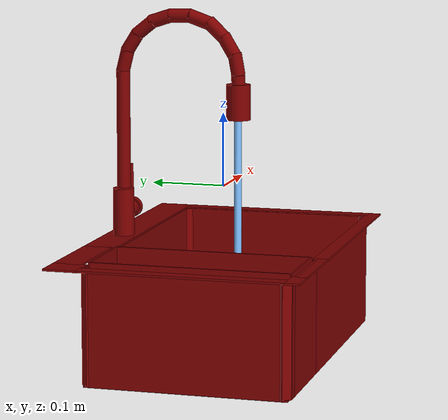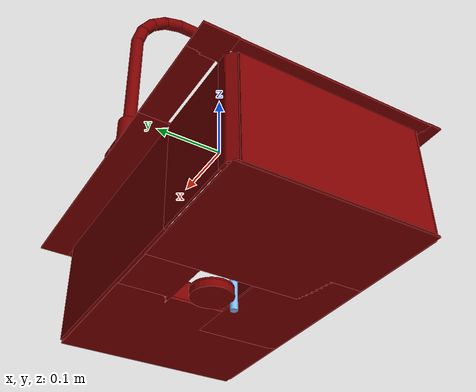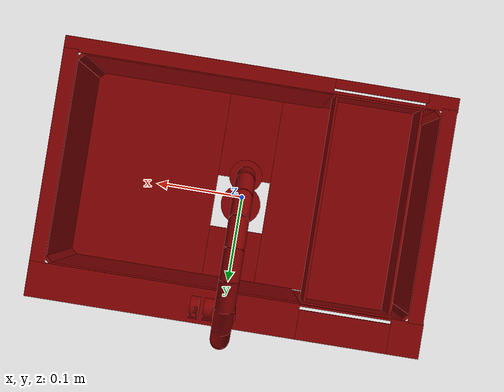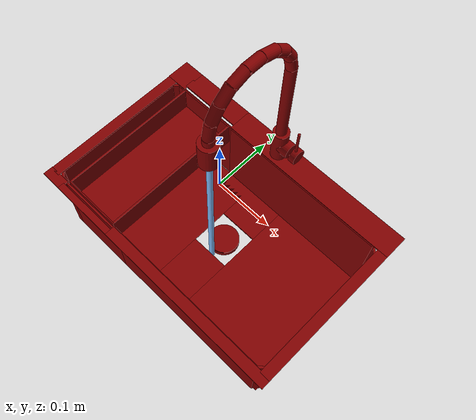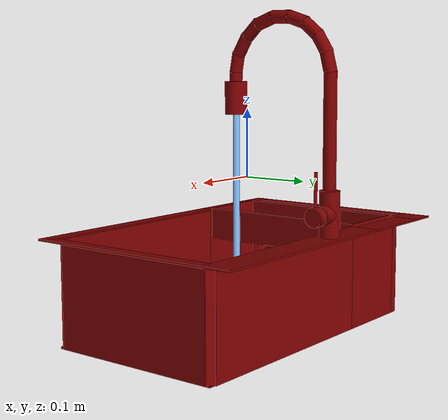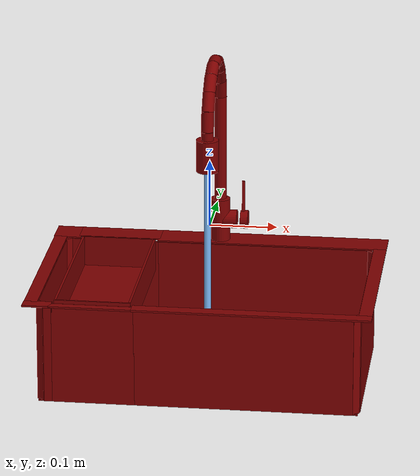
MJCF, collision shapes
<mujoco model="model">
  <compiler angle="radian"/>
  <asset>
    <mesh file="visuals/handle.obj" name="handle_vis"/>
    <mesh file="visuals/Body001.obj" name="Body001_vis"/>
    <mesh file="visuals/Container001.obj" name="Container001_vis"/>
    <mesh file="visuals/Funnel001.obj" name="Funnel001_vis"/>
    <mesh file="visuals/spout.obj" name="spout_vis"/>
    <texture file="visuals/T_BC001.png" name="Body001_material" type="2d"/>
    <material name="Body001_material" rgba="1 1 1 1.0" texture="Body001_material" shininess="0.4472135901451111" specular="0.3103448502657381"/>
    <texture file="visuals/T_BC001.png" name="handle_material" type="2d"/>
    <material name="handle_material" rgba="1 1 1 1.0" texture="handle_material" shininess="0.4472135901451111" specular="0.3103448502657381"/>
    <texture file="visuals/T_BC001.png" name="Container001_material" type="2d"/>
    <material name="Container001_material" rgba="1 1 1 1.0" texture="Container001_material" shininess="0.4472135901451111" specular="0.3103448502657381"/>
    <texture file="visuals/T_BC001.png" name="Funnel001_material" type="2d"/>
    <material name="Funnel001_material" rgba="1 1 1 1.0" texture="Funnel001_material" shininess="0.4472135901451111" specular="0.3103448502657381"/>
    <texture file="visuals/T_BC001.png" name="spout_material" type="2d"/>
    <material name="spout_material" rgba="1 1 1 1.0" texture="spout_material" shininess="0.4472135901451111" specular="0.3103448502657381"/>
  </asset>
  <default>
    <default class="visual">
      <geom conaffinity="0" contype="0" group="1" type="mesh"/>
    </default>
    <default class="collision">
      <geom group="0" rgba="0.5 0 0 0.5"/>
    </default>
    <default class="spawn">
      <geom group="0" rgba="1 1 1 0.5" contype="0" conaffinity="0"/>
      <site group="0" rgba="1 1 1 0.5"/>
    </default>
    <default class="region">
      <geom group="1" conaffinity="0" contype="0" rgba="0 1 0 0"/>
    </default>
  </default>
  <worldbody>
    <body>
      <body name="object">
        <geom mesh="Body001_vis" type="mesh" solimp="0.998 0.998 0.001" solref="0.001 1" density="100" friction="0.95 0.3 0.1" class="visual" material="Body001_material"/>
        <geom class="collision" type="box" pos="0.07946988195180893 0.14521253108978271 -0.07569845020771027" size="0.17448006570339203 0.022784609347581863 0.0013388915685936809" quat="1.0 0.0 0.0 0.0"/>
        <geom class="collision" type="box" pos="-0.24402308464050293 -0.014135673642158508 -0.07569845020771027" size="0.009730084799230099 0.1381855607032776 0.0013388915685936809" quat="1.0 0.0 0.0 0.0"/>
        <geom class="collision" type="box" pos="0.06694533675909042 -0.1501362919807434 -0.15309575200080872" size="0.16059443354606628 0.0026066654827445745 0.0768933892250061" quat="1.0 0.0 0.0 0.0"/>
        <geom class="collision" type="box" pos="0.2441803216934204 -0.014135673642158508 -0.07569845020771027" size="0.009730084799230099 0.1381855607032776 0.0013388915685936809" quat="1.0 0.0 0.0 0.0"/>
        <geom class="collision" type="box" pos="0.07946988195180893 -0.1585369110107422 -0.07569845020771027" size="0.17448006570339203 0.00957401655614376 0.0013388915685936809" quat="1.0 0.0 0.0 0.0"/>
        <geom class="collision" type="box" pos="0.2301943302154541 0.11907685548067093 -0.15309575200080872" size="0.002092407550662756 0.007040669675916433 0.0768933892250061" quat="0.9178581237792969 0.0 0.0 0.3969086706638336"/>
        <geom class="collision" type="box" pos="0.06694533675909042 0.12310408055782318 -0.15309575200080872" size="0.16059443354606628 0.0026066654827445745 0.0768933892250061" quat="1.0 0.0 0.0 0.0"/>
        <geom class="collision" type="box" pos="-0.23540011048316956 -0.013311982154846191 -0.15309575200080872" size="0.0020924056880176067 0.12659867107868195 0.0768933892250061" quat="1.0 0.0 0.0 0.0"/>
        <geom class="collision" type="box" pos="0.23569124937057495 -0.011899441480636597 -0.15309575200080872" size="0.0020924056880176067 0.12801121175289154 0.0768933892250061" quat="1.0 0.0 0.0 0.0"/>
        <geom class="collision" type="box" pos="0.2301943302154541 -0.14587688446044922 -0.15309575200080872" size="0.002092407550662756 0.007040669675916433 0.0768933892250061" quat="6.929635532060274e-08 -0.3969086706638336 -0.9178581237792969 -2.9965775638629566e-08"/>
        <geom class="collision" type="box" pos="-0.23086193203926086 -0.14587688446044922 -0.15309575200080872" size="0.0020924073178321123 0.007040669210255146 0.0768933892250061" quat="0.3969087302684784 0.0 0.0 -0.9178580641746521"/>
        <geom class="collision" type="box" pos="-0.23086193203926086 0.11907685548067093 -0.15309575200080872" size="0.002092407550662756 0.007040669675916433 0.0768933892250061" quat="6.929635532060274e-08 0.9178581237792969 -0.3969086706638336 -2.9965775638629566e-08"/>
        <geom class="collision" type="box" pos="-0.1363869607448578 -0.013953879475593567 -0.22999568283557892" size="0.0985148623585701 0.13538309931755066 0.0013388987863436341" quat="1.0 0.0 0.0 0.0"/>
        <geom class="collision" type="box" pos="0.13695737719535828 -0.013953879475593567 -0.22999568283557892" size="0.09775062650442123 0.13538309931755066 0.0013388987863436341" quat="1.0 0.0 0.0 0.0"/>
        <geom class="collision" type="box" pos="0.003469545394182205 -0.08808547258377075 -0.22999568283557892" size="0.09775062650442123 0.06125152111053467 0.0013388987863436341" quat="1.0 0.0 0.0 0.0"/>
        <geom class="collision" type="box" pos="0.003469545394182205 0.08454857766628265 -0.22999568283557892" size="0.09775062650442123 0.03620132803916931 0.0013388987863436341" quat="1.0 0.0 0.0 0.0"/>
        <geom class="collision" type="cylinder" pos="-0.0008405912667512894 0.14307278394699097 -0.04296581447124481" size="0.014659702777862549 0.03382165729999542" quat="1.0 0.0 0.0 0.0"/>
        <geom class="collision" type="cylinder" pos="0.013336420990526676 0.14307278394699097 -0.04188588261604309" size="0.01393008790910244 0.011113598942756653" quat="0.7071068286895752 -0.0 0.7071067690849304 0.0"/>
        <geom class="collision" type="box" pos="-0.21935132145881653 0.12310408055782318 -0.15309575200080872" size="0.00652328971773386 0.0026066654827445745 0.0768933892250061" quat="1.0 0.0 0.0 0.0"/>
        <geom class="collision" type="box" pos="-0.23364633321762085 -0.1585369110107422 -0.07569845020771027" size="0.020818306133151054 0.00957401655614376 0.0013388915685936809" quat="1.0 0.0 0.0 0.0"/>
        <geom class="collision" type="box" pos="-0.21935132145881653 -0.1501362919807434 -0.15309575200080872" size="0.00652328971773386 0.0026066654827445745 0.0768933892250061" quat="1.0 0.0 0.0 0.0"/>
        <geom class="collision" type="box" pos="-0.23364633321762085 0.14521253108978271 -0.07569845020771027" size="0.020818306133151054 0.022784609347581863 0.0013388915685936809" quat="1.0 0.0 0.0 0.0"/>
        <geom class="collision" type="box" pos="-0.15328797698020935 -0.15080370008945465 -0.15351323783397675" size="0.0609254390001297 0.0019392507383599877 0.07647588849067688" quat="1.0 0.0 0.0 0.0"/>
        <geom class="collision" type="box" pos="-0.15328797698020935 0.12429545819759369 -0.15351323783397675" size="0.0609254390001297 0.0014152881922200322 0.07647588849067688" quat="1.0 0.0 0.0 0.0"/>
        <geom class="collision" type="box" pos="-0.15415233373641968 0.14874722063541412 -0.07569845020771027" size="0.06198527663946152 0.019249917939305305 0.0013388915685936809" quat="1.0 0.0 0.0 0.0"/>
        <geom class="collision" type="box" pos="-0.15415233373641968 -0.16191387176513672 -0.07569845020771027" size="0.06198527663946152 0.006197056733071804 0.0013388915685936809" quat="1.0 0.0 0.0 0.0"/>
        <geom class="collision" type="cylinder" pos="-1.8930062651634216e-05 0.011154770851135254 -0.23456662893295288" size="0.028829501941800117 0.0052498579025268555" quat="1.0 0.0 0.0 0.0"/>
        <body name="handle">
          <joint axis="1.0 0.0 0.0" pos="0.03400851786136627 0.1429593414068222 -0.04242062568664551" limited="true" name="handle_joint_hinge_0" type="hinge" range="-0.7853981633974483 0.7853981633974483" damping="1" frictionloss="1" armature=".01" stiffness="0.05"/>
          <joint axis="0.0 1.0 0.0" pos="0.03400851786136627 0.1429593414068222 -0.04242062568664551" limited="true" name="handle_joint_hinge_1" type="hinge" range="0.0 0.2617993877991494" damping="1" frictionloss="1" armature=".01" stiffness="0.05"/>
          <geom mesh="handle_vis" type="mesh" solimp="0.998 0.998 0.001" solref="0.001 1" density="100" friction="0.95 0.3 0.1" class="visual" material="handle_material"/>
          <geom class="collision" type="cylinder" pos="0.03574741631746292 0.14307278394699097 -0.04188588261604309" size="0.01393008790910244 0.0056534456089138985" quat="0.7071068286895752 -0.0 0.7071067690849304 0.0"/>
          <geom class="collision" type="cylinder" pos="0.03410021588206291 0.142683744430542 -0.004955559968948364" size="0.0023752287961542606 0.024638855829834938" quat="1.0 0.0 0.0 0.0"/>
        </body>
        <body name="Container001">
          <joint axis="0.0 0.0 1.0" pos="-0.15404802560806274 -0.01304827630519867 -0.09694704413414001" limited="true" name="Container001_joint" range="0.0 0.1" type="slide" damping="1" frictionloss="1" armature=".01" stiffness="0.05"/>
          <geom mesh="Container001_vis" type="mesh" solimp="0.998 0.998 0.001" solref="0.001 1" density="100" friction="0.95 0.3 0.1" class="visual" material="Container001_material"/>
          <geom class="collision" type="box" pos="-0.20861363410949707 -0.013145402073860168 -0.09692299365997314" size="0.0016650656471028924 0.1346360743045807 0.02490542083978653" quat="1.0 0.0 0.0 0.0"/>
          <geom class="collision" type="box" pos="-0.15396377444267273 -0.013145402073860168 -0.11997489631175995" size="0.05309569835662842 0.13463619351387024 0.0018537152791395783" quat="1.0 0.0 0.0 0.0"/>
          <geom class="collision" type="box" pos="-0.15404289960861206 -0.14658337831497192 -0.09686517715454102" size="0.05623580142855644 0.0012342467671260238 0.024903666228055954" quat="1.0 0.0 0.0 0.0"/>
          <geom class="collision" type="box" pos="-0.15404289960861206 0.12038091570138931 -0.09686517715454102" size="0.05623580142855644 0.0012342480476945639 0.024903686717152596" quat="1.0 0.0 0.0 0.0"/>
          <geom class="collision" type="box" pos="-0.09946799278259277 -0.013145402073860168 -0.09692299365997314" size="0.0016650656471028924 0.13463664054870605 0.0249054916203022" quat="1.0 0.0 0.0 0.0"/>
        </body>
        <body name="Funnel001">
          <joint axis="0.0 0.0 1.0" pos="-5.84928784519434e-06 0.011282176710665226 -0.22756807506084442" limited="true" name="Funnel001_joint" range="0.0 0.1" type="slide" damping="1" frictionloss="1" armature=".01" stiffness="0.05"/>
          <geom mesh="Funnel001_vis" type="mesh" solimp="0.998 0.998 0.001" solref="0.001 1" density="100" friction="0.95 0.3 0.1" class="visual" material="Funnel001_material"/>
          <geom class="collision" type="cylinder" pos="-1.8930062651634216e-05 0.011154770851135254 -0.22805926203727722" size="0.028829501941800117 0.0013367949286475778" quat="1.0 0.0 0.0 0.0"/>
        </body>
        <body name="spout">
          <joint axis="0.0 0.0 1.0" pos="-0.0007294630631804466 0.14254266023635864 0.09287675470113754" limited="true" name="spout_joint" range="-0.7853981633974483 0.7853981633974483" type="hinge" damping="1" frictionloss="1" armature=".01" stiffness="0.05"/>
          <site type="cylinder" rgba="0.5 0.75 1 1" size="0.0050875539891421795 0.17169666290283203" pos="-0.000716126523911953 -0.02056644856929779 -0.0780714750289917" name="water"/>
          <geom mesh="spout_vis" type="mesh" solimp="0.998 0.998 0.001" solref="0.001 1" density="100" friction="0.95 0.3 0.1" class="visual" material="spout_material"/>
          <geom class="collision" type="cylinder" pos="-0.0008405912667512894 0.13903528451919556 0.16723482310771942" size="0.009375008754432201 0.015106167644262314" quat="0.9924028515815735 0.12303092330694199 0.0 0.0"/>
          <geom class="collision" type="cylinder" pos="-0.0008405912667512894 0.1422400027513504 0.07334433495998383" size="0.009375008754432201 0.08105318993330002" quat="1.0 0.0 0.0 0.0"/>
          <geom class="collision" type="cylinder" pos="-0.0008405912667512894 0.12861675024032593 0.1926870495080948" size="0.009375008754432201 0.01510616671293974" quat="0.9599521160125732 0.28016406297683716 0.0 0.0"/>
          <geom class="collision" type="cylinder" pos="-0.0008405912667512894 0.11064057797193527 0.21295808255672455" size="0.009375008754432201 0.015106163918972015" quat="0.9006063342094421 0.4346356987953186 0.0 0.0"/>
          <geom class="collision" type="cylinder" pos="-0.0008405912667512894 0.08794724941253662 0.22570712864398956" size="0.009375008754432201 0.015106165781617165" quat="0.8086215853691101 0.5883290767669678 0.0 0.0"/>
          <geom class="collision" type="cylinder" pos="-0.0008405912667512894 0.0603242889046669 0.23042429983615875" size="0.009375008754432201 0.015106165781617165" quat="0.7107754945755005 0.7034189105033875 0.0 0.0"/>
          <geom class="collision" type="cylinder" pos="-0.0008405912667512894 0.03376374393701553 0.22596211731433868" size="0.009375008754432201 0.01510616671293974" quat="0.5772291421890259 0.816582202911377 0.0 0.0"/>
          <geom class="collision" type="cylinder" pos="-0.0008405912667512894 0.009922996163368225 0.21283058822155" size="0.009375008754432201 0.015106165781617165" quat="0.39552512764930725 0.918455183506012 0.0 0.0"/>
          <geom class="collision" type="cylinder" pos="-0.0008405912667512894 -0.007925689220428467 0.19166715443134308" size="0.009375008754432201 0.01510616671293974" quat="0.26599380373954773 0.9639747142791748 0.0 0.0"/>
          <geom class="collision" type="cylinder" pos="-0.0008405912667512894 -0.018634900450706482 0.16655151546001434" size="0.009375008754432201 0.015106165781617165" quat="0.09022616595029831 0.9959213137626648 0.0 0.0"/>
          <geom class="collision" type="cylinder" pos="-0.0008405912667512894 -0.02120049297809601 0.13681872189044952" size="0.009375008754432201 0.015106165781617165" quat="0.0050633493810892105 0.9999871850013733 0.0 0.0"/>
          <geom class="collision" type="cylinder" pos="-0.0008405912667512894 -0.02120049297809601 0.11544255912303925" size="0.0164983831346035 0.02413669228553772" quat="7.549790126404332e-08 0.0 0.0 1.0"/>
        </body>
        <geom class="region" name="reg_main" type="box" pos="0.0 0.0 -0.1571895331144333" size="0.2535102963447571 0.16776415705680847 0.08261096477508545"/>
        <geom class="region" name="reg_basin" type="box" pos="0.06473659351468086 -0.012803681194782257 -0.15403112769126892" size="0.16184274479746819 0.13521317392587662 0.07227069139480591"/>
      </body>
    </body>
  </worldbody>
  <actuator>
    <motor name="handle_joint_hinge_0_actuator" joint="handle_joint_hinge_0" gear="10"/>
    <motor name="handle_joint_hinge_1_actuator" joint="handle_joint_hinge_1" gear="10"/>
    <motor name="Container001_joint_actuator" joint="Container001_joint" gear="10"/>
    <motor name="Funnel001_joint_actuator" joint="Funnel001_joint" gear="10"/>
    <motor name="spout_joint_actuator" joint="spout_joint" gear="10"/>
  </actuator>
</mujoco>
